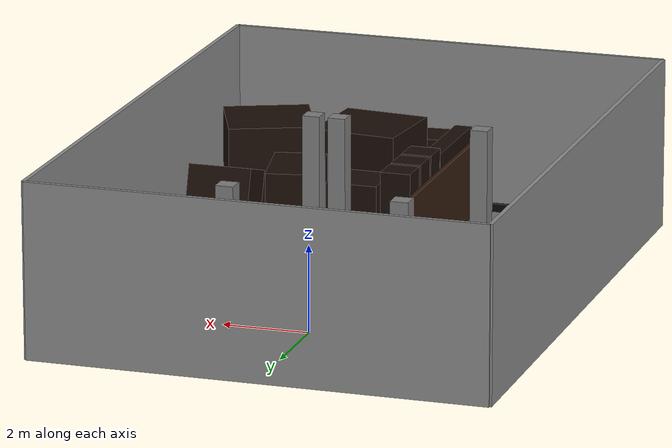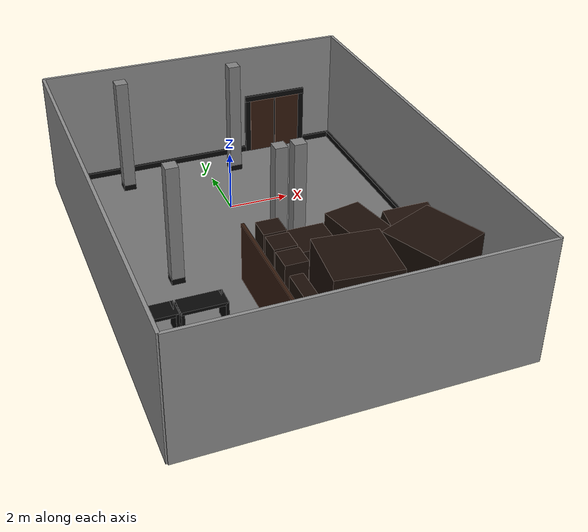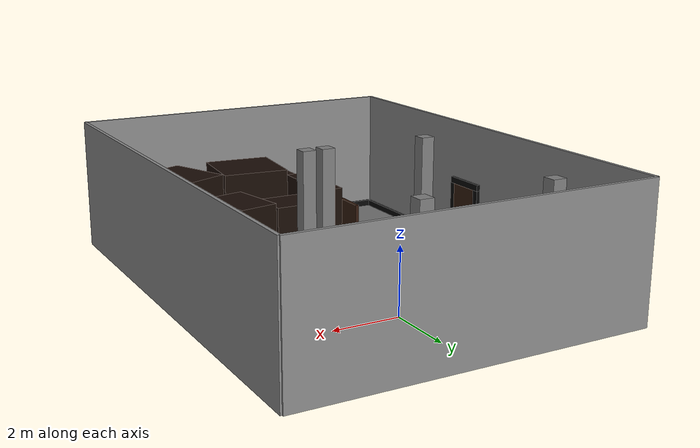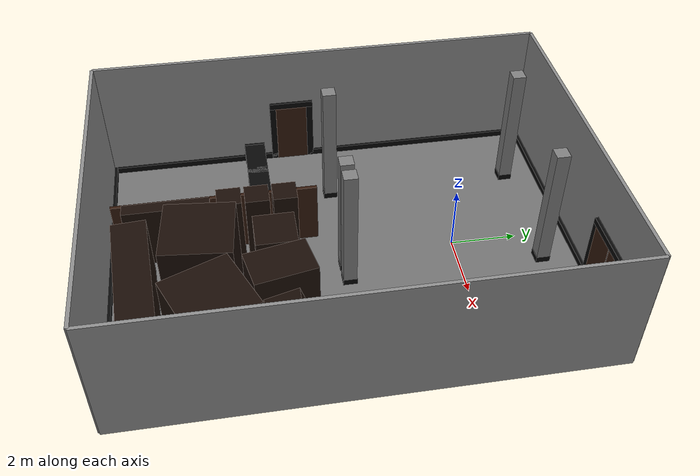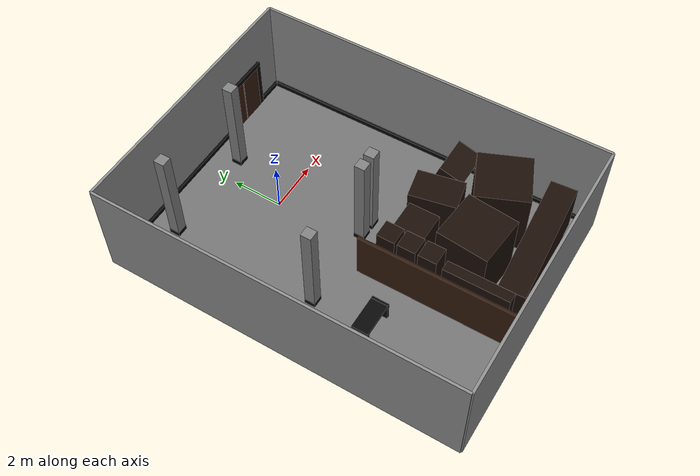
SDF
<?xml version="1.0"?>
<sdf version="1.6">
    <model name="lab_walls">
        <static>true</static>

        <link name="floor_link">
            <pose>0 -3.35 0 0 0 0</pose>
            <visual name="visual">
                <geometry>
                    <box>
                        <size>10.4 14 0.01</size>
                    </box>
                </geometry>
                <material>
                    <ambient>0.45 0.45 0.45 1</ambient>
                    <diffuse>0.45 0.45 0.45 1</diffuse>
                    <emissive>0.45 0.45 0.45 1</emissive>
                </material>
            </visual>
            <collision name="collision">
                <geometry>
                    <box>
                        <size>10.4 14 0.01</size>
                    </box>
                </geometry>
            </collision>
        </link>

        <link name="wall1_link">
            <pose>0 3.65 2 0 0 0</pose>
            <visual name="visual">
                <geometry>
                    <box>
                        <size>10.4 0.1 4</size>
                    </box>
                </geometry>
                <material>
                    <ambient>0.55 0.55 0.55 1</ambient>
                    <diffuse>0.55 0.55 0.55 1</diffuse>
                    <emissive>0.55 0.55 0.55 1</emissive>
                </material>
            </visual>
            <collision name="collision">
                <geometry>
                    <box>
                        <size>10.4 0.1 4</size>
                    </box>
                </geometry>
            </collision>
        </link>

        <link name="wall1_liner_link">
            <pose>0 3.55 0.1 0 0 0</pose>
            <visual name="visual">
                <geometry>
                    <box>
                    <size>10.4 0.1 0.2</size>
                    </box>
                </geometry>
                <material>
                    <ambient>0.025 0.025 0.025 1</ambient>
                    <diffuse>0.025 0.025 0.025 1</diffuse>
                    <emissive>0.025 0.025 0.025 1</emissive>
                </material>
            </visual>
            <collision name="collision">
                <geometry>
                    <box>
                        <size>10.4 0.1 0.2</size>
                    </box>
                </geometry>
            </collision>
        </link>

        <link name="wall2_link">
            <pose>0 -10.35 2 0 0 0</pose>
            <visual name="visual">
                <geometry>
                    <box>
                        <size>10.4 0.1 4</size>
                    </box>
                </geometry>
                <material>
                    <ambient>0.55 0.55 0.55 1</ambient>
                    <diffuse>0.55 0.55 0.55 1</diffuse>
                    <emissive>0.55 0.55 0.55 1</emissive>
                </material>
            </visual>
            <collision name="collision">
                <geometry>
                    <box>
                        <size>10.4 0.1 4</size>
                    </box>
                </geometry>
            </collision>
        </link>

        <link name="wall2_liner_link">
            <pose>0 -10.25 0.1 0 0 0</pose>
            <visual name="visual">
                <geometry>
                    <box>
                        <size>10.4 0.1 0.2</size>
                    </box>
                </geometry>
                <material>
                    <ambient>0.025 0.025 0.025 1</ambient>
                    <diffuse>0.025 0.025 0.025 1</diffuse>
                    <emissive>0.025 0.025 0.025 1</emissive>
                </material>
            </visual>
            <collision name="collision">
                <geometry>
                    <box>
                        <size>10.4 0.1 0.2</size>
                    </box>
                </geometry>
            </collision>
        </link>

        <link name="wall3_link">
            <pose>5.2 -3.35 2 0 0 0</pose>
            <visual name="visual">
                <geometry>
                    <box>
                        <size>0.1 14 4</size>
                    </box>
                </geometry>
                <material>
                    <ambient>0.55 0.55 0.55 1</ambient>
                    <diffuse>0.55 0.55 0.55 1</diffuse>
                    <emissive>0.55 0.55 0.55 1</emissive>
                    <specular>0.1 0.1 0.1 1</specular>
                </material>
            </visual>
            <collision name="collision">
                <geometry>
                    <box>
                        <size>0.1 14 4</size>
                    </box>
                </geometry>
            </collision>
        </link>

        <link name="wall3_liner_link">
            <pose>5.1 -3.35 0.1 0 0 0</pose>
            <visual name="visual">
                <geometry>
                    <box>
                        <size>0.1 14 0.2</size>
                    </box>
                </geometry>
                <material>
                    <ambient>0.025 0.025 0.025 1</ambient>
                    <diffuse>0.025 0.025 0.025 1</diffuse>
                    <emissive>0.025 0.025 0.025 1</emissive>
                </material>
            </visual>
            <collision name="collision">
                <geometry>
                    <box>
                        <size>0.1 14 0.2</size>
                    </box>
                </geometry>
            </collision>
        </link>

        <link name="wall4_link">
            <pose>-5.2 -3.35 2 0 0 0</pose>
            <visual name="visual">
                <geometry>
                    <box>
                        <size>0.1 14 4</size>
                    </box>
                </geometry>
                <material>
                    <ambient>0.55 0.55 0.55 1</ambient>
                    <diffuse>0.55 0.55 0.55 1</diffuse>
                    <emissive>0.55 0.55 0.55 1</emissive>
                    <specular>0.1 0.1 0.1 1</specular>
                </material>
            </visual>
            <collision name="collision">
                <geometry>
                    <box>
                        <size>0.1 14 4</size>
                    </box>
                </geometry>
            </collision>
        </link>

        <link name="wall4_liner_link">
            <pose>-5.1 -3.35 0.1 0 0 0</pose>
            <visual name="visual">
                <geometry>
                    <box>
                        <size>0.1 14 0.2</size>
                    </box>
                </geometry>
                <material>
                    <ambient>0.025 0.025 0.025 1</ambient>
                    <diffuse>0.025 0.025 0.025 1</diffuse>
                    <emissive>0.025 0.025 0.025 1</emissive>
                </material>
            </visual>
            <collision name="collision">
                <geometry>
                    <box>
                        <size>0.1 14 0.2</size>
                    </box>
                </geometry>
            </collision>
        </link>

        <link name="column1_link">
            <pose>-2.9 2.5 2 0 0 0</pose>
            <visual name="visual">
                <geometry>
                    <box>
                        <size>0.4 0.4 4</size>
                    </box>
                </geometry>
                <material>
                    <ambient>0.5 0.5 0.5 1</ambient>
                    <diffuse>0.5 0.5 0.5 1</diffuse>
                    <emissive>0.5 0.5 0.5 1</emissive>
                    <specular>0.1 0.1 0.1 1</specular>
                </material>
            </visual>
            <collision name="collision">
                <geometry>
                    <box>
                        <size>0.4 0.4 4</size>
                    </box>
                </geometry>
            </collision>
        </link>

        <link name="column1_liner_link">
            <pose>-2.9 2.5 0.1 0 0 0</pose>
            <visual name="visual">
                <geometry>
                    <box>
                        <size>0.42 0.42 0.2</size>
                    </box>
                </geometry>
                <material>
                    <ambient>0.025 0.025 0.025 1</ambient>
                    <diffuse>0.025 0.025 0.025 1</diffuse>
                    <emissive>0.025 0.025 0.025 1</emissive>
                </material>
            </visual>
            <collision name="collision">
                <geometry>
                    <box>
                        <size>0.42 0.42 0.2</size>
                    </box>
                </geometry>
            </collision>
        </link>

        <link name="column2_link">
            <pose>1.0 2.5 2 0 0 0</pose>
            <visual name="visual">
                <geometry>
                    <box>
                        <size>0.4 0.4 4</size>
                    </box>
                </geometry>
                <material>
                    <ambient>0.5 0.5 0.5 1</ambient>
                    <diffuse>0.5 0.5 0.5 1</diffuse>
                    <emissive>0.5 0.5 0.5 1</emissive>
                    <specular>0.1 0.1 0.1 1</specular>
                </material>
            </visual>
            <collision name="collision">
                <geometry>
                    <box>
                        <size>0.4 0.4 4</size>
                    </box>
                </geometry>
            </collision>
        </link>

        <link name="column2_liner_link">
            <pose>1.0 2.5 0.1 0 0 0</pose>
            <visual name="visual">
                <geometry>
                    <box>
                        <size>0.42 0.42 0.2</size>
                    </box>
                </geometry>
                <material>
                    <ambient>0.025 0.025 0.025 1</ambient>
                    <diffuse>0.025 0.025 0.025 1</diffuse>
                    <emissive>0.025 0.025 0.025 1</emissive>
                </material>
            </visual>
            <collision name="collision">
                <geometry>
                    <box>
                        <size>0.42 0.42 0.2</size>
                    </box>
                </geometry>
            </collision>
        </link>

        <link name="column3_link">
            <pose>1.0 -3.35 2 0 0 0</pose>
            <visual name="visual">
                <geometry>
                    <box>
                        <size>0.4 0.4 4</size>
                    </box>
                </geometry>
                <material>
                    <ambient>0.5 0.5 0.5 1</ambient>
                    <diffuse>0.5 0.5 0.5 1</diffuse>
                    <emissive>0.5 0.5 0.5 1</emissive>
                    <specular>0.1 0.1 0.1 1</specular>
                </material>
            </visual>
            <collision name="collision">
                <geometry>
                    <box>
                        <size>0.4 0.4 4</size>
                    </box>
                </geometry>
            </collision>
        </link>

        <link name="column3_liner_link">
            <pose>1.0 -3.35 0.1 0 0 0</pose>
            <visual name="visual">
                <geometry>
                    <box>
                        <size>0.42 0.42 0.2</size>
                    </box>
                </geometry>
                <material>
                    <ambient>0.025 0.025 0.025 1</ambient>
                    <diffuse>0.025 0.025 0.025 1</diffuse>
                    <emissive>0.025 0.025 0.025 1</emissive>
                </material>
            </visual>
            <collision name="collision">
                <geometry>
                    <box>
                        <size>0.42 0.42 0.2</size>
                    </box>
                </geometry>
            </collision>
        </link>

        <link name="column4_link">
            <pose>0.4 -3.35 2 0 0 0</pose>
            <visual name="visual">
                <geometry>
                    <box>
                        <size>0.4 0.4 4</size>
                    </box>
                </geometry>
                <material>
                    <ambient>0.5 0.5 0.5 1</ambient>
                    <diffuse>0.5 0.5 0.5 1</diffuse>
                    <emissive>0.5 0.5 0.5 1</emissive>
                    <specular>0.1 0.1 0.1 1</specular>
                </material>
            </visual>
            <collision name="collision">
                <geometry>
                    <box>
                        <size>0.4 0.4 4</size>
                    </box>
                </geometry>
            </collision>
        </link>

        <link name="column4_liner_link">
            <pose>0.4 -3.35 0.1 0 0 0</pose>
            <visual name="visual">
                <geometry>
                    <box>
                        <size>0.42 0.42 0.2</size>
                    </box>
                </geometry>
                <material>
                    <ambient>0.025 0.025 0.025 1</ambient>
                    <diffuse>0.025 0.025 0.025 1</diffuse>
                    <emissive>0.025 0.025 0.025 1</emissive>
                </material>
            </visual>
            <collision name="collision">
                <geometry>
                    <box>
                        <size>0.42 0.42 0.2</size>
                    </box>
                </geometry>
            </collision>
        </link>

        <link name="column5_link">
            <pose>-2.9 -3.35 2 0 0 0</pose>
            <visual name="visual">
                <geometry>
                    <box>
                        <size>0.4 0.4 4</size>
                    </box>
                </geometry>
                <material>
                    <ambient>0.5 0.5 0.5 1</ambient>
                    <diffuse>0.5 0.5 0.5 1</diffuse>
                    <emissive>0.5 0.5 0.5 1</emissive>
                    <specular>0.1 0.1 0.1 1</specular>
                </material>
            </visual>
            <collision name="collision">
                <geometry>
                    <box>
                        <size>0.4 0.4 4</size>
                    </box>
                </geometry>
            </collision>
        </link>

        <link name="column5_liner_link">
            <pose>-2.9 -3.35 0.1 0 0 0</pose>
            <visual name="visual">
                <geometry>
                    <box>
                        <size>0.42 0.42 0.2</size>
                    </box>
                </geometry>
                <material>
                    <ambient>0.025 0.025 0.025 1</ambient>
                    <diffuse>0.025 0.025 0.025 1</diffuse>
                    <emissive>0.025 0.025 0.025 1</emissive>
                </material>
            </visual>
            <collision name="collision">
                <geometry>
                    <box>
                        <size>0.42 0.42 0.2</size>
                    </box>
                </geometry>
            </collision>
        </link>

        <link name="door1_left_link">
            <pose>2.45 3.54 1 0 0 0</pose>
            <visual name="visual">
                <geometry>
                    <box>
                        <size>0.9 0.12 2</size>
                    </box>
                </geometry>
                <material>0.2 0.1 0.05
                    <ambient>0.2 0.1 0.05 1</ambient>
                    <diffuse>0.2 0.1 0.05 1</diffuse>
                    <emissive>0.2 0.1 0.05 1</emissive>
                </material>
            </visual>
            <collision name="collision">
                <geometry>
                    <box>
                        <size>0.9 0.12 2</size>
                    </box>
                </geometry>
            </collision>
        </link>

        <link name="door1_right_link">
            <pose>3.4 3.54 1 0 0 0</pose>
            <visual name="visual">
                <geometry>
                    <box>
                        <size>0.9 0.12 2</size>
                    </box>
                </geometry>
                <material>0.2 0.1 0.05
                    <ambient>0.2 0.1 0.05 1</ambient>
                    <diffuse>0.2 0.1 0.05 1</diffuse>
                    <emissive>0.2 0.1 0.05 1</emissive>
                </material>
            </visual>
            <collision name="collision">
                <geometry>
                    <box>
                        <size>0.9 0.12 2</size>
                    </box>
                </geometry>
            </collision>
        </link>

        <link name="door1_left_liner_link">
            <pose>1.9 3.54 1 0 0 0</pose>
            <visual name="visual">
                <geometry>
                    <box>
                        <size>0.2 0.1 2</size>
                    </box>
                </geometry>
                <material>0.2 0.1 0.05
                    <ambient>0.025 0.025 0.025 1</ambient>
                    <diffuse>0.025 0.025 0.025 1</diffuse>
                    <emissive>0.025 0.025 0.025 1</emissive>
                </material>
            </visual>
            <collision name="collision">
                <geometry>
                    <box>
                        <size>0.2 0.1 2</size>
                    </box>
                </geometry>
            </collision>
        </link>

        <link name="door1_right_liner_link">
            <pose>3.95 3.54 1 0 0 0</pose>
            <visual name="visual">
                <geometry>
                    <box>
                        <size>0.2 0.1 2</size>
                    </box>
                </geometry>
                <material>0.2 0.1 0.05
                    <ambient>0.025 0.025 0.025 1</ambient>
                    <diffuse>0.025 0.025 0.025 1</diffuse>
                    <emissive>0.025 0.025 0.025 1</emissive>
                </material>
            </visual>
            <collision name="collision">
                <geometry>
                    <box>
                        <size>0.2 0.1 2</size>
                    </box>
                </geometry>
            </collision>
        </link>

        <link name="door1_middle_liner_link">
            <pose>2.925 3.54 1 0 0 0</pose>
            <visual name="visual">
                <geometry>
                    <box>
                        <size>0.2 0.1 2</size>
                    </box>
                </geometry>
                <material>0.2 0.1 0.05
                    <ambient>0.025 0.025 0.025 1</ambient>
                    <diffuse>0.025 0.025 0.025 1</diffuse>
                    <emissive>0.025 0.025 0.025 1</emissive>
                </material>
            </visual>
            <collision name="collision">
                <geometry>
                    <box>
                        <size>0.2 0.1 2</size>
                    </box>
                </geometry>
            </collision>
        </link>

        <link name="door1_top_liner_link">
            <pose>2.925 3.54 2.1 0 0 0</pose>
            <visual name="visual">
                <geometry>
                    <box>
                        <size>2.25 0.1 0.2</size>
                    </box>
                </geometry>
                <material>0.2 0.1 0.05
                    <ambient>0.025 0.025 0.025 1</ambient>
                    <diffuse>0.025 0.025 0.025 1</diffuse>
                    <emissive>0.025 0.025 0.025 1</emissive>
                </material>
            </visual>
            <collision name="collision">
                <geometry>
                    <box>
                        <size>2.25 0.1 0.2</size>
                    </box>
                </geometry>
            </collision>
        </link>

        <link name="door2_link">
            <pose>-5.1 -4.3 1 0 0 0</pose>
            <visual name="visual">
                <geometry>
                    <box>
                        <size>0.12 1 2</size>
                    </box>
                </geometry>
                <material>0.2 0.1 0.05
                    <ambient>0.2 0.1 0.05 1</ambient>
                    <diffuse>0.2 0.1 0.05 1</diffuse>
                    <emissive>0.2 0.1 0.05 1</emissive>
                </material>
            </visual>
            <collision name="collision">
                <geometry>
                    <box>
                        <size>0.9 0.12 2</size>
                    </box>
                </geometry>
            </collision>
        </link>

        <link name="door2_left_liner_link">
            <pose>-5.1 -4.9 1 0 0 0</pose>
            <visual name="visual">
                <geometry>
                    <box>
                        <size>0.1 0.2 2</size>
                    </box>
                </geometry>
                <material>0.1 0.2 0.05
                    <ambient>0.025 0.025 0.025 1</ambient>
                    <diffuse>0.025 0.025 0.025 1</diffuse>
                    <emissive>0.025 0.025 0.025 1</emissive>
                </material>
            </visual>
            <collision name="collision">
                <geometry>
                    <box>
                        <size>0.2 0.1 2</size>
                    </box>
                </geometry>
            </collision>
        </link>

        <link name="door2_right_liner_link">
            <pose>-5.1 -3.7 1 0 0 0</pose>
            <visual name="visual">
                <geometry>
                    <box>
                        <size>0.1 0.2 2</size>
                    </box>
                </geometry>
                <material>0.1 0.2 0.05
                    <ambient>0.025 0.025 0.025 1</ambient>
                    <diffuse>0.025 0.025 0.025 1</diffuse>
                    <emissive>0.025 0.025 0.025 1</emissive>
                </material>
            </visual>
            <collision name="collision">
                <geometry>
                    <box>
                        <size>0.1 1.4 0.2</size>
                    </box>
                </geometry>
            </collision>
        </link>

        <link name="door2_top_liner_link">
            <pose>-5.1 -4.3 2.1 0 0 0</pose>
            <visual name="visual">
                <geometry>
                    <box>
                        <size>0.1 1.4 0.2</size>
                    </box>
                </geometry>
                <material>0.1 0.2 0.05
                    <ambient>0.025 0.025 0.025 1</ambient>
                    <diffuse>0.025 0.025 0.025 1</diffuse>
                    <emissive>0.025 0.025 0.025 1</emissive>
                </material>
            </visual>
            <collision name="collision">
                <geometry>
                    <box>
                        <size>0.1 1.4 0.2</size>
                    </box>
                </geometry>
            </collision>
        </link>

        <link name="table1_leg1_link">
            <pose>-4.9 -5.6 0.4 0 0 0</pose>
            <visual name="visual">
                <geometry>
                    <box>
                        <size>0.1 0.65 0.8</size>
                    </box>
                </geometry>
                <material>0.1 0.2 0.05
                    <ambient>0.025 0.025 0.025 1</ambient>
                    <diffuse>0.025 0.025 0.025 1</diffuse>
                    <emissive>0.025 0.025 0.025 1</emissive>
                </material>
            </visual>
            <collision name="collision">
                <geometry>
                    <box>
                        <size>0.1 0.65 0.8</size>
                    </box>
                </geometry>
            </collision>
        </link>

        <link name="table1_leg2_link">
            <pose>-3.6 -5.6 0.4 0 0 0</pose>
            <visual name="visual">
                <geometry>
                    <box>
                        <size>0.1 0.65 0.8</size>
                    </box>
                </geometry>
                <material>0.1 0.2 0.05
                    <ambient>0.025 0.025 0.025 1</ambient>
                    <diffuse>0.025 0.025 0.025 1</diffuse>
                    <emissive>0.025 0.025 0.025 1</emissive>
                </material>
            </visual>
            <collision name="collision">
                <geometry>
                    <box>
                        <size>0.1 0.65 0.8</size>
                    </box>
                </geometry>
            </collision>
        </link>

        <link name="table1_top_link">
            <pose>-4.25 -5.6 0.75 0 0 0</pose>
            <visual name="visual">
                <geometry>
                    <box>
                        <size>1.4 0.65 0.1</size>
                    </box>
                </geometry>
                <material>0.1 0.2 0.05
                    <ambient>0.025 0.025 0.025 1</ambient>
                    <diffuse>0.025 0.025 0.025 1</diffuse>
                    <emissive>0.025 0.025 0.025 1</emissive>
                </material>
            </visual>
            <collision name="collision">
                <geometry>
                    <box>
                        <size>1.4 0.65 0.1</size>
                    </box>
                </geometry>
            </collision>
        </link>

        <link name="table2_leg1_link">
            <pose>-3.45 -5.6 0.4 0 0 0</pose>
            <visual name="visual">
                <geometry>
                    <box>
                        <size>0.1 0.65 0.8</size>
                    </box>
                </geometry>
                <material>0.1 0.2 0.05
                    <ambient>0.025 0.025 0.025 1</ambient>
                    <diffuse>0.025 0.025 0.025 1</diffuse>
                    <emissive>0.025 0.025 0.025 1</emissive>
                </material>
            </visual>
            <collision name="collision">
                <geometry>
                    <box>
                        <size>0.1 0.65 0.8</size>
                    </box>
                </geometry>
            </collision>
        </link>

        <link name="table2_leg2_link">
            <pose>-2.15 -5.6 0.4 0 0 0</pose>
            <visual name="visual">
                <geometry>
                    <box>
                        <size>0.1 0.65 0.8</size>
                    </box>
                </geometry>
                <material>0.1 0.2 0.05
                    <ambient>0.025 0.025 0.025 1</ambient>
                    <diffuse>0.025 0.025 0.025 1</diffuse>
                    <emissive>0.025 0.025 0.025 1</emissive>
                </material>
            </visual>
            <collision name="collision">
                <geometry>
                    <box>
                        <size>0.1 0.65 0.8</size>
                    </box>
                </geometry>
            </collision>
        </link>

        <link name="table2_top_link">
            <pose>-2.8 -5.6 0.75 0 0 0</pose>
            <visual name="visual">
                <geometry>
                    <box>
                        <size>1.4 0.65 0.1</size>
                    </box>
                </geometry>
                <material>0.1 0.2 0.05
                    <ambient>0.025 0.025 0.025 1</ambient>
                    <diffuse>0.025 0.025 0.025 1</diffuse>
                    <emissive>0.025 0.025 0.025 1</emissive>
                </material>
            </visual>
            <collision name="collision">
                <geometry>
                    <box>
                        <size>1.4 0.65 0.1</size>
                    </box>
                </geometry>
            </collision>
        </link>

        <link name="ae2rbe_divider_link">
            <pose>-1 -7 1 0 0 0</pose>
            <visual name="visual">
                <geometry>
                    <box>
                        <size>0.1 6 2</size>
                    </box>
                </geometry>
                <material>0.1 0.2 0.05
                    <ambient>0.2 0.1 0.05 1</ambient>
                    <diffuse>0.2 0.1 0.05 1</diffuse>
                    <emissive>0.2 0.1 0.05 1</emissive>
                </material>
            </visual>
            <collision name="collision">
                <geometry>
                    <box>
                        <size>0.1 6 2</size>
                    </box>
                </geometry>
            </collision>
        </link>

        <link name="box1_link">
            <pose>-0.5 -5 1.2 0 0 0</pose>
            <visual name="visual">
                <geometry>
                    <box>
                        <size>0.7 0.7 2.4</size>
                    </box>
                </geometry>
                <material>0.1 0.2 0.05
                    <ambient>0.1 0.05 0.025 1</ambient>
                    <diffuse>0.1 0.05 0.025 1</diffuse>
                    <emissive>0.1 0.05 0.025 1</emissive>
                </material>
            </visual>
            <collision name="collision">
                <geometry>
                    <box>
                        <size>0.7 0.7 1.6</size>
                    </box>
                </geometry>
            </collision>
        </link>

        <link name="box2_link">
            <pose>0.6 -5.4 1.2 0 0 0</pose>
            <visual name="visual">
                <geometry>
                    <box>
                        <size>1.2 1.2 1.6</size>
                    </box>
                </geometry>
                <material>0.1 0.2 0.05
                    <ambient>0.1 0.05 0.025 1</ambient>
                    <diffuse>0.1 0.05 0.025 1</diffuse>
                    <emissive>0.1 0.05 0.025 1</emissive>
                </material>
            </visual>
            <collision name="collision">
                <geometry>
                    <box>
                        <size>1.2 1.2 1.6</size>
                    </box>
                </geometry>
            </collision>
        </link>

        <link name="box3_link">
            <pose>-0.5 -5.8 1.2 0 0 0</pose>
            <visual name="visual">
                <geometry>
                    <box>
                        <size>0.7 0.7 2.4</size>
                    </box>
                </geometry>
                <material>0.1 0.2 0.05
                    <ambient>0.1 0.05 0.025 1</ambient>
                    <diffuse>0.1 0.05 0.025 1</diffuse>
                    <emissive>0.1 0.05 0.025 1</emissive>
                </material>
            </visual>
            <collision name="collision">
                <geometry>
                    <box>
                        <size>0.7 0.7 1.6</size>
                    </box>
                </geometry>
            </collision>
        </link>

        <link name="box4_link">
            <pose>-0.5 -6.6 1.2 0 0 0</pose>
            <visual name="visual">
                <geometry>
                    <box>
                        <size>0.7 0.7 2.4</size>
                    </box>
                </geometry>
                <material>0.1 0.2 0.05
                    <ambient>0.1 0.05 0.025 1</ambient>
                    <diffuse>0.1 0.05 0.025 1</diffuse>
                    <emissive>0.1 0.05 0.025 1</emissive>
                </material>
            </visual>
            <collision name="collision">
                <geometry>
                    <box>
                        <size>0.7 0.7 1.6</size>
                    </box>
                </geometry>
            </collision>
        </link>

        <link name="box5_link">
            <pose>2.1 -5.4 1.2 0 0 0.2</pose>
            <visual name="visual">
                <geometry>
                    <box>
                        <size>1.2 1.8 2</size>
                    </box>
                </geometry>
                <material>0.1 0.2 0.05
                    <ambient>0.1 0.05 0.025 1</ambient>
                    <diffuse>0.1 0.05 0.025 1</diffuse>
                    <emissive>0.1 0.05 0.025 1</emissive>
                </material>
            </visual>
            <collision name="collision">
                <geometry>
                    <box>
                        <size>1.2 1.8 2</size>
                    </box>
                </geometry>
            </collision>
        </link>

        <link name="box6_link">
            <pose>1 -7.5 1.2 0 0 -0.1</pose>
            <visual name="visual">
                <geometry>
                    <box>
                        <size>2 2 3</size>
                    </box>
                </geometry>
                <material>0.1 0.2 0.05
                    <ambient>0.1 0.05 0.025 1</ambient>
                    <diffuse>0.1 0.05 0.025 1</diffuse>
                    <emissive>0.1 0.05 0.025 1</emissive>
                </material>
            </visual>
            <collision name="collision">
                <geometry>
                    <box>
                        <size>2 2 3</size>
                    </box>
                </geometry>
            </collision>
        </link>

        <link name="box7_link">
            <pose>-0.6 -8.4 1.2 0 0 0</pose>
            <visual name="visual">
                <geometry>
                    <box>
                        <size>0.4 2.5 2</size>
                    </box>
                </geometry>
                <material>0.1 0.2 0.05
                    <ambient>0.1 0.05 0.025 1</ambient>
                    <diffuse>0.1 0.05 0.025 1</diffuse>
                    <emissive>0.1 0.05 0.025 1</emissive>
                </material>
            </visual>
            <collision name="collision">
                <geometry>
                    <box>
                        <size>0.4 2.5 2</size>
                    </box>
                </geometry>
            </collision>
        </link>

        <link name="box8_link">
            <pose>3.4 -7.3 1.2 0 0 0.4</pose>
            <visual name="visual">
                <geometry>
                    <box>
                        <size>2 2 3</size>
                    </box>
                </geometry>
                <material>0.1 0.2 0.05
                    <ambient>0.1 0.05 0.025 1</ambient>
                    <diffuse>0.1 0.05 0.025 1</diffuse>
                    <emissive>0.1 0.05 0.025 1</emissive>
                </material>
            </visual>
            <collision name="collision">
                <geometry>
                    <box>
                        <size>2 2 3</size>
                    </box>
                </geometry>
            </collision>
        </link>

        <link name="box9_link">
            <pose>3.8 -5.18 1 0.3 0 0</pose>
            <visual name="visual">
                <geometry>
                    <box>
                        <size>1.5 1 2</size>
                    </box>
                </geometry>
                <material>0.1 0.2 0.05
                    <ambient>0.1 0.05 0.025 1</ambient>
                    <diffuse>0.1 0.05 0.025 1</diffuse>
                    <emissive>0.1 0.05 0.025 1</emissive>
                </material>
            </visual>
            <collision name="collision">
                <geometry>
                    <box>
                        <size>1.5 1 2</size>
                    </box>
                </geometry>
            </collision>
        </link>

        <link name="box10_link">
            <pose>2.2 -9.3 1 0 0 0.07</pose>
            <visual name="visual">
                <geometry>
                    <box>
                        <size>5 1 2</size>
                    </box>
                </geometry>
                <material>0.1 0.2 0.05
                    <ambient>0.1 0.05 0.025 1</ambient>
                    <diffuse>0.1 0.05 0.025 1</diffuse>
                    <emissive>0.1 0.05 0.025 1</emissive>
                </material>
            </visual>
            <collision name="collision">
                <geometry>
                    <box>
                        <size>5 1 2</size>
                    </box>
                </geometry>
            </collision>
        </link>

    </model>
</sdf>
